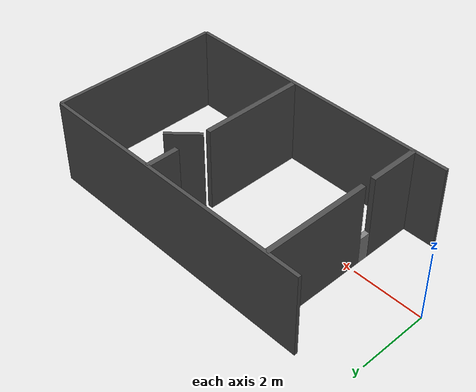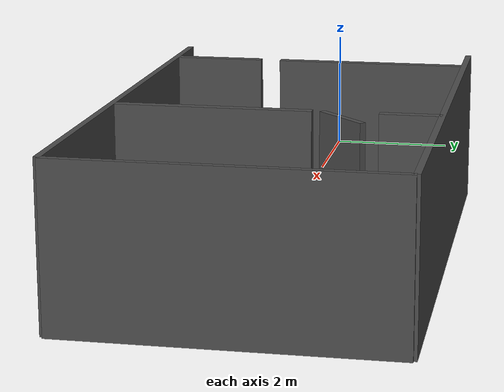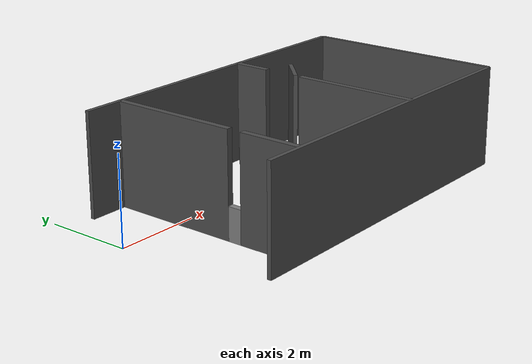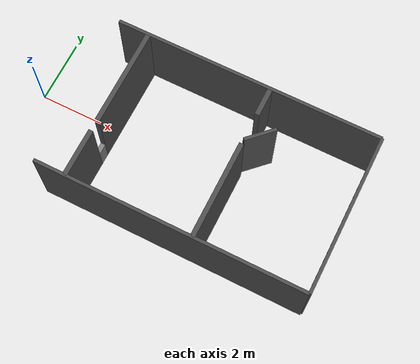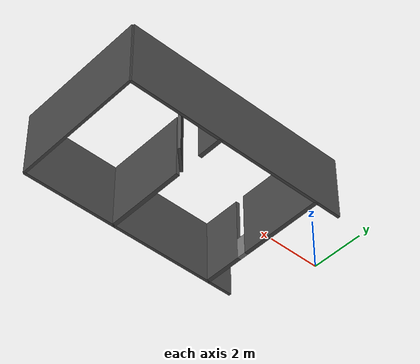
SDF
<?xml version='1.0' encoding='UTF-8'?>
<sdf version="1.10">
  <model name="realistic_room">

    <static>true</static>

    <link name="roof">
      <pose>5.75 0.0 2 0 0 0</pose>
    </link>

    <link name="left_wall">
      <pose>5.75 2.5 0.75 0 0 0</pose>
      <visual name="left_wall_visual"><geometry><box><size>8.5 0.1 2.5</size></box></geometry>
        <material><diffuse>0.3 0.3 0.3 1</diffuse>
        <ambient>0.3 0.3 0.3 1</ambient>

        </material>
      </visual>
    </link>

    <link name="right_wall">
      <pose>5.75 -2.5 0.75 0 0 0</pose>
      <visual name="right_wall_visual"><geometry><box><size>8.5 0.1 2.5</size></box></geometry>
        <material><diffuse>0.3 0.3 0.3 1</diffuse>
        <ambient>0.3 0.3 0.3 1</ambient>

        </material>
      </visual>
    </link>

    <link name="front_wall">
      <pose>10.0 0.0 0.75 0 0 0</pose>
      <visual name="front_wall_visual"><geometry><box><size>0.1 5 2.5</size></box></geometry>
        <material><diffuse>0.3 0.3 0.3 1</diffuse>
        <ambient>0.3 0.3 0.3 1</ambient>

        </material>
      </visual>
    </link>

    <link name="wall1_left">
      <pose>2.5 0.9192 0.75 0 0 0</pose>
      <visual name="wall1_left_visual"><geometry><box><size>0.15 3.1617 2.5</size></box></geometry>
        <material><diffuse>0.3 0.3 0.3 1</diffuse>
        <ambient>0.3 0.3 0.3 1</ambient>

        </material>
      </visual>
    </link>

    <link name="wall1_right">
      <pose>2.5 -1.7458 0.75 0 0 0</pose>
      <visual name="wall1_right_visual"><geometry><box><size>0.15 1.5083 2.5</size></box></geometry>
        <material><diffuse>0.3 0.3 0.3 1</diffuse>
        <ambient>0.3 0.3 0.3 1</ambient>

        </material>
      </visual>
    </link>

     <link name="wall1_bottom">
      <pose>2.5 -0.8267 -0.1 0 0 0</pose>
      <visual name="wall1_bottom_visual"><geometry><box><size>0.15 0.33 0.8</size></box></geometry>
        <material><diffuse>0.5 0.5 0.5 1</diffuse>
        <ambient>0.5 0.5 0.5 1</ambient>

        </material>
      </visual>
    </link>

    <link name="wall2_left">
      <pose>6.5 2.0353 0.75 0 0 0</pose>
      <visual name="wall2_left_visual"><geometry><box><size>0.15 0.9294 2.5</size></box></geometry>
        <material><diffuse>0.3 0.3 0.3 1</diffuse>
        <ambient>0.3 0.3 0.3 1</ambient>

        </material>
      </visual>
    </link>

    <link name="wall2_right">
      <pose>6.5 -0.9647 0.75 0 0 0</pose>
      <visual name="wall2_right_visual"><geometry><box><size>0.15 3.0706 2.5</size></box></geometry>
        <material><diffuse>0.3 0.3 0.3 1</diffuse>
        <ambient>0.3 0.3 0.3 1</ambient>

        </material>
      </visual>
    </link>

    <link name="door">
      <pose>6.85 1.0706 0.75 0 0 0.78</pose>
      <visual name="door_visual"><geometry><box><size>1.0 0.1 2.5</size></box></geometry>
        <material><diffuse>0.3 0.3 0.3 1</diffuse>
        <ambient>0.3 0.3 0.3 1</ambient>

        </material>
      </visual>
    </link>

  </model>
</sdf>
